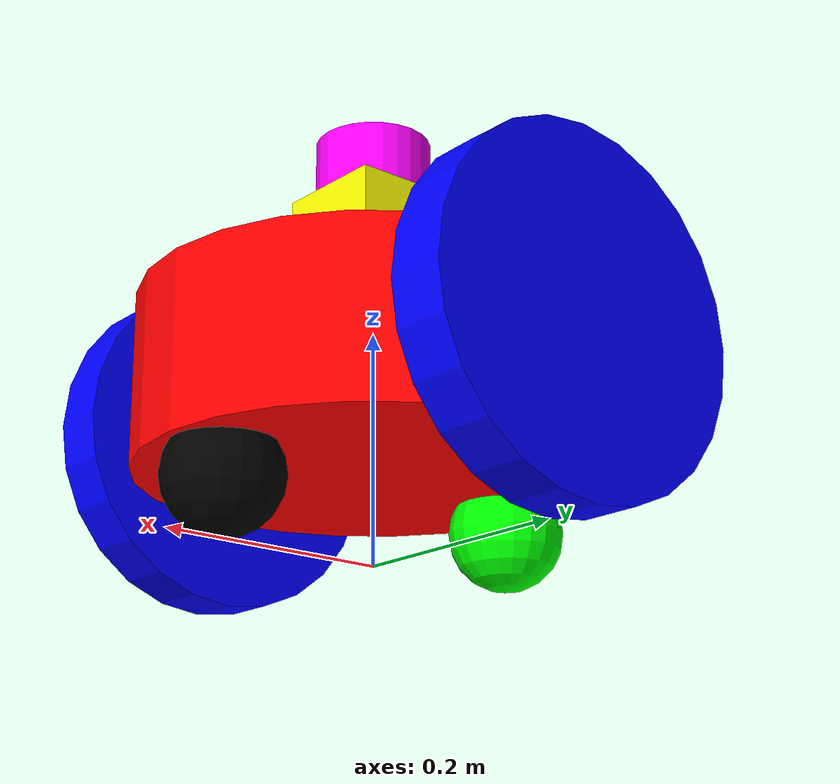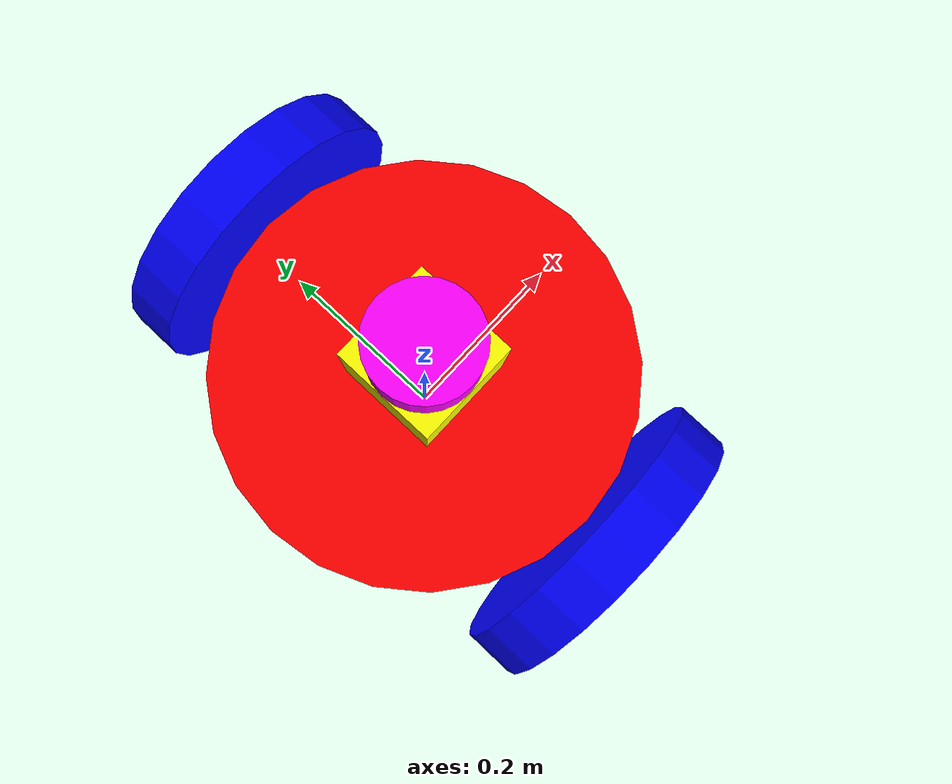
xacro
<?xml version="1.0"?>
<robot xmlns:xacro="http://ros.org/wiki/xacro" name="diff_drive_robot">

	<xacro:include filename="$(find diff_drive_pkg)/xacro/v04_add_gazebo_LiDAR/material_colors.xacro" />
	<xacro:include filename="$(find diff_drive_pkg)/xacro/v04_add_gazebo_LiDAR/parts_macro.xacro" />
	<xacro:include filename="$(find diff_drive_pkg)/xacro/v04_add_gazebo_LiDAR/joints_macro.xacro" />
	<xacro:include filename="$(find diff_drive_pkg)/xacro/v04_add_gazebo_LiDAR/gazebo_material_macro.xacro" />
	<xacro:include filename="$(find diff_drive_pkg)/xacro/v04_add_gazebo_LiDAR/gazebo_diffJoint_macro.xacro" />
	<xacro:include filename="$(find diff_drive_pkg)/xacro/v04_add_gazebo_LiDAR/gazebo_LiDAR_macro.xacro" />

	<!-- ############## リンクの生成 ############### -->
  <link name="base_link"/>
	<!-- ボディ -->
	<xacro:link_generator name="body" mass="1.0" color_name="red">
        <cylinder radius="0.2" length="0.15" />
        <inertia ixx="0.0118750" iyy="0.0118750" izz="0.0200000" ixy="0" ixz="0" iyz="0"/>
	</xacro:link_generator>
	<!-- 左車輪 -->
	<xacro:link_generator name="wheel_left" mass="0.5" color_name="blue">
		<cylinder radius="0.15" length="0.05"/>
        <inertia ixx="0.0029167" iyy="0.0029167" izz="0.0056250" ixy="0" ixz="0" iyz="0"/>
	</xacro:link_generator>
	<!-- 右車輪 -->
	<xacro:link_generator name="wheel_right" mass="0.5" color_name="blue">
		<cylinder radius="0.15" length="0.05"/>
        <inertia ixx="0.0029167" iyy="0.0029167" izz="0.0056250" ixy="0" ixz="0" iyz="0"/>
	</xacro:link_generator>
	<!-- 前方キャスター -->
	<xacro:link_generator name="caster_forward" mass="0.5" color_name="green">
		<sphere radius="0.05"/>
        <inertia ixx="3.000e-4" iyy="3.000e-4" izz="3.000e-4" ixy="0" ixz="0" iyz="0"/>
	</xacro:link_generator>
	<!-- 後方キャスター -->
	<xacro:link_generator name="caster_backward" mass="0.5" color_name="black">
		<sphere radius="0.05"/>
        <inertia ixx="3.000e-4" iyy="3.000e-4" izz="3.000e-4" ixy="0" ixz="0" iyz="0"/>
	</xacro:link_generator>
	<!-- LiDAR台 -->
	<xacro:link_generator name="lidar_base" mass="0.15" color_name="yellow">
		<box size="0.1 0.1 0.1"/>
		<inertia ixx="0.25" iyy="0.25" izz="0.25" ixy="0" ixz="0" iyz="0"/>
	</xacro:link_generator>
	<!-- LiDAR -->
	<xacro:link_generator name="lidar_link" mass="0.05" color_name="purple">
		<cylinder radius="0.05" length="0.05"/>
		<inertia ixx="0.125" iyy="0.125" izz="0.188" ixy="0" ixz="0" iyz="0"/>
	</xacro:link_generator>

	<!-- ############## ジョイントの生成 ############### -->
	<!-- ベース・ボディ -->
	<xacro:fixed_joint name="base_joint" parent="base_link" child="body">
        <origin xyz="0 0 0.15" rpy="0 0 0"/>
	</xacro:fixed_joint>
	<!-- ボディ・左車輪 -->
	<xacro:continuous_joint name="wheel_left_joint" parent="body" child="wheel_left">
        <origin xyz="0 -0.225 0" rpy="1.57 0 0"/>
        <axis xyz="0 0 1"/>
	</xacro:continuous_joint>
	<!-- ボディ・右車輪 -->
	<xacro:continuous_joint name="wheel_right_joint" parent="body" child="wheel_right">
        <origin xyz="0 0.225 0" rpy="1.57 0 0"/>
        <axis xyz="0 0 1"/>
	</xacro:continuous_joint>
	<!-- ボディ・前方キャスター -->
	<xacro:fixed_joint name="caster_forward_joint" parent="body" child="caster_forward">
        <origin xyz="-0.15 0 -0.1" rpy="0 0 0"/>
	</xacro:fixed_joint>
	<!-- ボディ・後方キャスター -->
	<xacro:fixed_joint name="caster_backward_joint" parent="body" child="caster_backward">
        <origin xyz="0.15 0 -0.1" rpy="0 0 0"/>
	</xacro:fixed_joint>
	<!-- ボディ・LiDAR台 -->
	<xacro:fixed_joint name="lidar_base_joint" parent="body" child="lidar_base">
        <origin xyz="0 0 0.125" rpy="0 0 0"/>
	</xacro:fixed_joint>
	<!-- LiDAR台・LiDAR -->
	<xacro:fixed_joint name="lidar_joint" parent="lidar_base" child="lidar_link">
        <origin xyz="0 0 0.075" rpy="0 0 0"/>
	</xacro:fixed_joint>

	<!-- ############## Gazebo上のパーツ設定 ############### -->
	<xacro:gazebo_material ref="body" mu="0.2">
		<material>Gazebo/Red</material>
	</xacro:gazebo_material>
	<xacro:gazebo_material ref="wheel_left" mu="0.2">
		<material>Gazebo/Blue</material>
	</xacro:gazebo_material>
	<xacro:gazebo_material ref="wheel_right" mu="0.2">
		<material>Gazebo/Blue</material>
	</xacro:gazebo_material>
	<xacro:gazebo_material ref="caster_forward" mu="0.0">
		<material>Gazebo/Green</material>
	</xacro:gazebo_material>
	<xacro:gazebo_material ref="caster_backward" mu="0.0">
		<material>Gazebo/Black</material>
	</xacro:gazebo_material>
	<xacro:gazebo_material ref="lidar_base" mu="0.0">
		<material>Gazebo/Yellow</material>
	</xacro:gazebo_material>
	<xacro:gazebo_material ref="lidar_link" mu="0.0">
		<material>Gazebo/Purple</material>
	</xacro:gazebo_material>

	<!-- ############## Gazebo上の差動駆動設定 ############### -->
	<xacro:gazebo_diff_Joint leftJoint_name="wheel_left_joint" rightJoint_name="wheel_right_joint" base_name="base_link" tread="0.45" wheel_Diameter="0.30"/>

	<!-- ############## Gazebo上のLiDAR設定 ############### -->
	<xacro:gazebo_LiDAR
		ref="lidar_link"
		sensor_name="ydlidar_sensor"
		viz="true"
		update_rate="40"
		sample_N="700"
		scan_resolution="1"
		min_angle="-3.14159265358979"
		max_angle="3.14159265358979"
		min_range="0.12"
		max_range="8"
		range_resolution="0.72"
		plugIn_name="gazebo_ros_ydlidar_controller"
		topic_name="/scan"
		frame_name="lidar_link"
																		>
		<pose>0 0 0 0 0 0</pose>
	</xacro:gazebo_LiDAR>

</robot>

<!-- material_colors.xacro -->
<!--色情報に関するマクロファイル-->
<?xml version="1.0"?>
<robot xmlns:xacro="http://ros.org/wiki/xacro">

<!-- Define Material Colors -->
<material name="white">
    <color rgba="1.0 1.0 1.0 1.0"/>
</material>

<material name="red">
    <color rgba="1.0 0.0 0.0 1.0"/>
</material>

<material name="green">
    <color rgba="0.0 1.0 0.0 1.0"/>
</material>

<material name="blue">
    <color rgba="0.0 0.0 1.0 1.0"/>
</material>

<material name="yellow">
    <color rgba="1.0 1.0 0.0 1.0"/>
</material>

<material name="cyan">
    <color rgba="0.0 1.0 1.0 1.0"/>
</material>

<material name="purple">
    <color rgba="1.0 0.0 1.0 1.0"/>
</material>

<material name="black">
    <color rgba="0.0 0.0 0.0 1.0"/>
</material>

</robot>

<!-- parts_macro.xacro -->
<!--パーツに関するマクロファル-->
<?xml version="1.0"?>
<robot xmlns:xacro="http://ros.org/wiki/xacro">

<xacro:macro name="link_generator" params="name mass color_name *shape *inertia">
    <link name="${name}">
        <visual>
            <geometry>
                <xacro:insert_block name="shape" />
            </geometry>
            <material name="${color_name}"/>
        </visual>
        <collision>
            <geometry>
                <xacro:insert_block name="shape" />
            </geometry>
        </collision>
        <!--慣性-->
        <inertial>
            <mass value="${mass}"/>
                    <xacro:insert_block name="inertia" />
        </inertial>
    </link>
</xacro:macro>

</robot>

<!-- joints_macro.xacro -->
<!--ジョイントに関するマクロファイル-->
<?xml version="1.0"?>
<robot xmlns:xacro="http://ros.org/wiki/xacro">

<xacro:macro name="fixed_joint" params="name parent child *origin">

	<joint name="${name}" type="fixed">
    <xacro:insert_block name="origin" />
    <parent link="${parent}"/>
    <child link="${child}"/>
 	</joint>

</xacro:macro>

<xacro:macro name="continuous_joint" params="name parent child *origin *axis">

	<joint name="${name}" type="continuous">
    <xacro:insert_block name="origin" />
    <parent link="${parent}"/>
    <child link="${child}"/>
    <xacro:insert_block name="axis" />
 	</joint>

</xacro:macro>

</robot>
